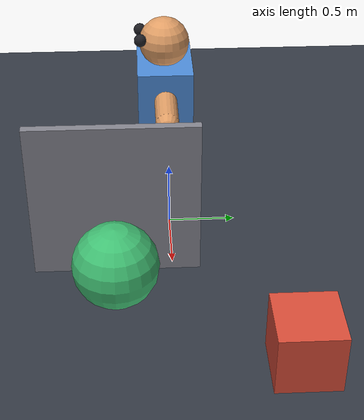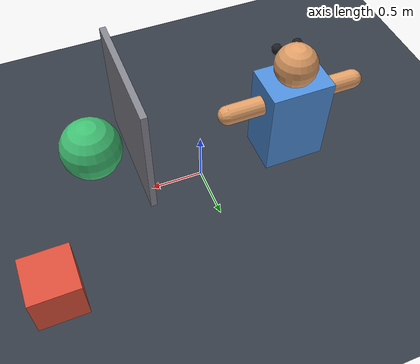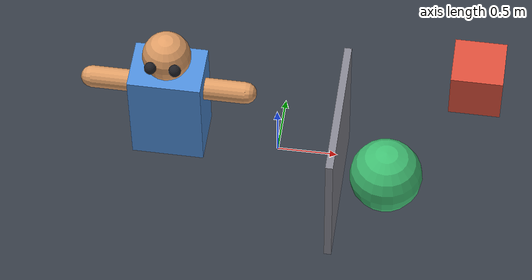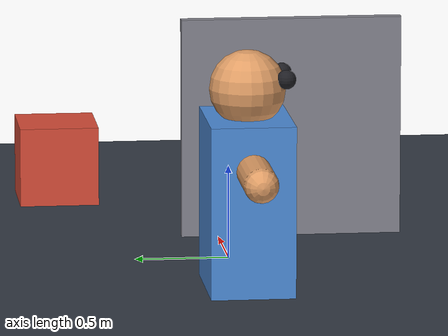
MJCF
<mujoco model="outline">
  <compiler angle="degree" autolimits="true"/>

  <visual>
    <headlight ambient="0.22 0.22 0.24" diffuse="0.45 0.45 0.45" specular="0.35 0.35 0.35"/>
    <quality shadowsize="4096" numslices="28" numstacks="16"/>
    <map znear="0.02" zfar="60" shadowclip="1.5" shadowscale="0.7"/>
  </visual>

  <asset>
    <texture name="grid" type="2d" builtin="checker" width="512" height="512"
             rgb1="0.14 0.16 0.19" rgb2="0.26 0.29 0.34"/>
    <material name="floor" texture="grid" texrepeat="1 1" texuniform="true" reflectance="0.1"/>

    <material name="arm"    rgba="0.30 0.55 0.85 1" specular="0.3" shininess="0.4"/>
    <material name="flesh"  rgba="0.88 0.62 0.40 1" specular="0.2" shininess="0.3"/>
    <material name="eye"    rgba="0.12 0.12 0.14 1" specular="0.6" shininess="0.8"/>
    <material name="wall"   rgba="0.52 0.52 0.56 1" specular="0.1" shininess="0.2"/>
    <material name="aside"  rgba="0.85 0.30 0.22 1" specular="0.25" shininess="0.4"/>
    <material name="behind" rgba="0.25 0.75 0.45 1" specular="0.25" shininess="0.4"/>
  </asset>

  <worldbody>
    <light name="sun" type="directional" pos="2.0 -3.0 5" dir="-0.3 0.45 -1"
           diffuse="0.75 0.75 0.72" specular="0.3 0.3 0.3" castshadow="true"/>
    <light name="fill" type="directional" pos="-3 1 3" dir="0.5 -0.2 -0.5"
           diffuse="0.15 0.15 0.18" specular="0 0 0" castshadow="false"/>

    <geom name="floor" type="plane" size="0 0 0.05" material="floor"/>

    <body name="arm" pos="-0.9 0.0 0.0">
      <geom name="arm_torso" type="box" size="0.30 0.22 0.45" pos="0 0 0.50" material="arm"/>
      <geom name="arm_arm_l" type="capsule" size="0.09 0.30" pos="0.34 0 0.72" euler="0 90 0" material="flesh"/>
      <geom name="arm_arm_r" type="capsule" size="0.09 0.30" pos="-0.34 0 0.72" euler="0 90 0" material="flesh"/>
      <geom name="arm_head"  type="sphere"  size="0.20"        pos="0 0 1.10"             material="flesh"/>
      <geom name="arm_eye"   type="sphere"  size="0.05"        pos="0.10 -0.19 1.16"      material="eye"/>
      <geom name="arm_eye2"  type="sphere"  size="0.05"        pos="-0.10 -0.19 1.16"     material="eye"/>
    </body>

    <geom name="wall" type="box" size="0.03 0.6 0.6" pos="0.55 -0.4 0.6" material="wall"/>
    <body name="behind_link" pos="0.95 -0.4 0.35">
      <geom name="behind" type="sphere" size="0.30" material="behind"/>
    </body>

    <body name="aside_link" pos="1.6 0.8 0.22">
      <geom name="aside" type="box" size="0.22 0.22 0.22" material="aside"/>
    </body>
  </worldbody>
</mujoco>
